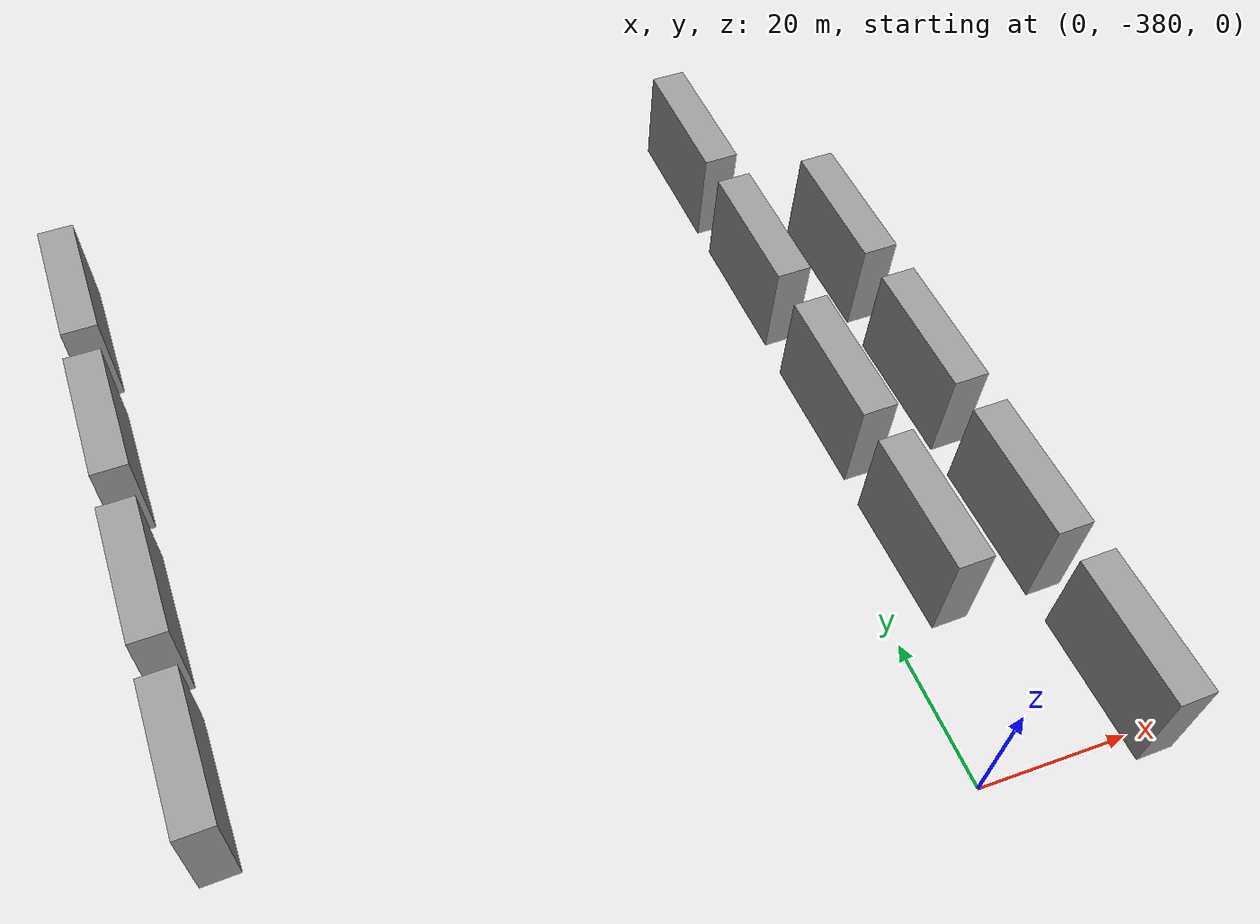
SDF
<sdf version="1.6">
 <world name="darpa_boxes">
  <model name="box_7">
   <link name="link">
    <inertial>
     <mass>1</mass>
     <inertia>
      <ixx>0.166667</ixx>
      <ixy>0</ixy>
      <ixz>0</ixz>
      <iyy>0.166667</iyy>
      <iyz>0</iyz>
      <izz>0.166667</izz>
     </inertia>
     <pose>0 0 7.5 0 -0 0</pose>
    </inertial>
    <visual name="visual">
     <geometry><box><size>5 20 15</size></box></geometry>
     <material>
      <script><name>Gazebo/Grey</name><uri>file://media/materials/scripts/gazebo.material</uri></script>
      <shader type="vertex"><normal_map>_default_</normal_map></shader>
      <ambient>0.3 0.3 0.3 1</ambient>
      <diffuse>0.7 0.7 0.7 1</diffuse>
      <specular>0.01 0.01 0.01 1</specular>
      <emissive>0 0 0 1</emissive>
     </material>
     <pose>0 0 7.5 0 -0 0</pose>
    </visual>
    <collision name="collision">
     <pose>0 0 7.5 0 -0 0</pose>
     <geometry><box><size>5 20 15</size></box></geometry>
     <surface>
      <friction>
       <ode><mu>1</mu><mu2>1</mu2><fdir1>0 0 0</fdir1><slip1>0</slip1><slip2>0</slip2></ode>
       <torsional>
        <coefficient>1</coefficient>
        <patch_radius>0</patch_radius>
        <surface_radius>0</surface_radius>
        <use_patch_radius>1</use_patch_radius>
        <ode><slip>0</slip></ode>
       </torsional>
      </friction>
      <bounce><restitution_coefficient>0</restitution_coefficient><threshold>1e+06</threshold></bounce>
      <contact>
       <collide_without_contact>0</collide_without_contact>
       <collide_without_contact_bitmask>1</collide_without_contact_bitmask>
       <collide_bitmask>1</collide_bitmask>
       <ode>
        <soft_cfm>0</soft_cfm>
        <soft_erp>0.2</soft_erp>
        <kp>1e+13</kp>
        <kd>1</kd>
        <max_vel>0.01</max_vel>
        <min_depth>0</min_depth>
       </ode>
       <bullet>
        <split_impulse>1</split_impulse>
        <split_impulse_penetration_threshold>-0.01</split_impulse_penetration_threshold>
        <soft_cfm>0</soft_cfm>
        <soft_erp>0.2</soft_erp>
        <kp>1e+13</kp>
        <kd>1</kd>
       </bullet>
      </contact>
     </surface>
    </collision>
   </link>
   <static>1</static>
   <pose>6.45947 -274.93 -0.049551 0.005047 -0.000114 0.022472</pose>
  </model>
  <model name="box_8">
   <link name="link">
    <inertial>
     <mass>1</mass>
     <inertia>
      <ixx>0.166667</ixx>
      <ixy>0</ixy>
      <ixz>0</ixz>
      <iyy>0.166667</iyy>
      <iyz>0</iyz>
      <izz>0.166667</izz>
     </inertia>
     <pose>0 0 7.5 0 -0 0</pose>
    </inertial>
    <visual name="visual">
     <geometry><box><size>5 20 15</size></box></geometry>
     <material>
      <script><name>Gazebo/Grey</name><uri>file://media/materials/scripts/gazebo.material</uri></script>
      <shader type="vertex"><normal_map>_default_</normal_map></shader>
      <ambient>0.3 0.3 0.3 1</ambient>
      <diffuse>0.7 0.7 0.7 1</diffuse>
      <specular>0.01 0.01 0.01 1</specular>
      <emissive>0 0 0 1</emissive>
     </material>
     <pose>0 0 7.5 0 -0 0</pose>
    </visual>
    <collision name="collision">
     <pose>0 0 7.5 0 -0 0</pose>
     <geometry><box><size>5 20 15</size></box></geometry>
     <surface>
      <friction>
       <ode><mu>1</mu><mu2>1</mu2><fdir1>0 0 0</fdir1><slip1>0</slip1><slip2>0</slip2></ode>
       <torsional>
        <coefficient>1</coefficient>
        <patch_radius>0</patch_radius>
        <surface_radius>0</surface_radius>
        <use_patch_radius>1</use_patch_radius>
        <ode><slip>0</slip></ode>
       </torsional>
      </friction>
      <bounce><restitution_coefficient>0</restitution_coefficient><threshold>1e+06</threshold></bounce>
      <contact>
       <collide_without_contact>0</collide_without_contact>
       <collide_without_contact_bitmask>1</collide_without_contact_bitmask>
       <collide_bitmask>1</collide_bitmask>
       <ode>
        <soft_cfm>0</soft_cfm>
        <soft_erp>0.2</soft_erp>
        <kp>1e+13</kp>
        <kd>1</kd>
        <max_vel>0.01</max_vel>
        <min_depth>0</min_depth>
       </ode>
       <bullet>
        <split_impulse>1</split_impulse>
        <split_impulse_penetration_threshold>-0.01</split_impulse_penetration_threshold>
        <soft_cfm>0</soft_cfm>
        <soft_erp>0.2</soft_erp>
        <kp>1e+13</kp>
        <kd>1</kd>
       </bullet>
      </contact>
     </surface>
    </collision>
   </link>
   <static>1</static>
   <pose>6.96106 -299.323 -0.049551 0.005047 -0.000114 0.022472</pose>
  </model>
  <model name="box_9">
   <link name="link">
    <inertial>
     <mass>1</mass>
     <inertia>
      <ixx>0.166667</ixx>
      <ixy>0</ixy>
      <ixz>0</ixz>
      <iyy>0.166667</iyy>
      <iyz>0</iyz>
      <izz>0.166667</izz>
     </inertia>
     <pose>0 0 7.5 0 -0 0</pose>
    </inertial>
    <visual name="visual">
     <geometry><box><size>5 20 15</size></box></geometry>
     <material>
      <script><name>Gazebo/Grey</name><uri>file://media/materials/scripts/gazebo.material</uri></script>
      <shader type="vertex"><normal_map>_default_</normal_map></shader>
      <ambient>0.3 0.3 0.3 1</ambient>
      <diffuse>0.7 0.7 0.7 1</diffuse>
      <specular>0.01 0.01 0.01 1</specular>
      <emissive>0 0 0 1</emissive>
     </material>
     <pose>0 0 7.5 0 -0 0</pose>
    </visual>
    <collision name="collision">
     <pose>0 0 7.5 0 -0 0</pose>
     <geometry><box><size>5 20 15</size></box></geometry>
     <surface>
      <friction>
       <ode><mu>1</mu><mu2>1</mu2><fdir1>0 0 0</fdir1><slip1>0</slip1><slip2>0</slip2></ode>
       <torsional>
        <coefficient>1</coefficient>
        <patch_radius>0</patch_radius>
        <surface_radius>0</surface_radius>
        <use_patch_radius>1</use_patch_radius>
        <ode><slip>0</slip></ode>
       </torsional>
      </friction>
      <bounce><restitution_coefficient>0</restitution_coefficient><threshold>1e+06</threshold></bounce>
      <contact>
       <collide_without_contact>0</collide_without_contact>
       <collide_without_contact_bitmask>1</collide_without_contact_bitmask>
       <collide_bitmask>1</collide_bitmask>
       <ode>
        <soft_cfm>0</soft_cfm>
        <soft_erp>0.2</soft_erp>
        <kp>1e+13</kp>
        <kd>1</kd>
        <max_vel>0.01</max_vel>
        <min_depth>0</min_depth>
       </ode>
       <bullet>
        <split_impulse>1</split_impulse>
        <split_impulse_penetration_threshold>-0.01</split_impulse_penetration_threshold>
        <soft_cfm>0</soft_cfm>
        <soft_erp>0.2</soft_erp>
        <kp>1e+13</kp>
        <kd>1</kd>
       </bullet>
      </contact>
     </surface>
    </collision>
   </link>
   <static>1</static>
   <pose>7.18976 -324.823 -0.049551 0.005047 -0.000114 0.022472</pose>
  </model>
  <model name="box_10">
   <link name="link">
    <inertial>
     <mass>1</mass>
     <inertia>
      <ixx>0.166667</ixx>
      <ixy>0</ixy>
      <ixz>0</ixz>
      <iyy>0.166667</iyy>
      <iyz>0</iyz>
      <izz>0.166667</izz>
     </inertia>
     <pose>0 0 7.5 0 -0 0</pose>
    </inertial>
    <visual name="visual">
     <geometry><box><size>5 20 15</size></box></geometry>
     <material>
      <script><name>Gazebo/Grey</name><uri>file://media/materials/scripts/gazebo.material</uri></script>
      <shader type="vertex"><normal_map>_default_</normal_map></shader>
      <ambient>0.3 0.3 0.3 1</ambient>
      <diffuse>0.7 0.7 0.7 1</diffuse>
      <specular>0.01 0.01 0.01 1</specular>
      <emissive>0 0 0 1</emissive>
     </material>
     <pose>0 0 7.5 0 -0 0</pose>
    </visual>
    <collision name="collision">
     <pose>0 0 7.5 0 -0 0</pose>
     <geometry><box><size>5 20 15</size></box></geometry>
     <surface>
      <friction>
       <ode><mu>1</mu><mu2>1</mu2><fdir1>0 0 0</fdir1><slip1>0</slip1><slip2>0</slip2></ode>
       <torsional>
        <coefficient>1</coefficient>
        <patch_radius>0</patch_radius>
        <surface_radius>0</surface_radius>
        <use_patch_radius>1</use_patch_radius>
        <ode><slip>0</slip></ode>
       </torsional>
      </friction>
      <bounce><restitution_coefficient>0</restitution_coefficient><threshold>1e+06</threshold></bounce>
      <contact>
       <collide_without_contact>0</collide_without_contact>
       <collide_without_contact_bitmask>1</collide_without_contact_bitmask>
       <collide_bitmask>1</collide_bitmask>
       <ode>
        <soft_cfm>0</soft_cfm>
        <soft_erp>0.2</soft_erp>
        <kp>1e+13</kp>
        <kd>1</kd>
        <max_vel>0.01</max_vel>
        <min_depth>0</min_depth>
       </ode>
       <bullet>
        <split_impulse>1</split_impulse>
        <split_impulse_penetration_threshold>-0.01</split_impulse_penetration_threshold>
        <soft_cfm>0</soft_cfm>
        <soft_erp>0.2</soft_erp>
        <kp>1e+13</kp>
        <kd>1</kd>
       </bullet>
      </contact>
     </surface>
    </collision>
   </link>
   <static>1</static>
   <pose>7.48707 -349.113 -0.049551 0.005047 -0.000114 0.022472</pose>
  </model>
  <model name="box_14">
   <link name="link">
    <inertial>
     <mass>1</mass>
     <inertia>
      <ixx>0.166667</ixx>
      <ixy>0</ixy>
      <ixz>0</ixz>
      <iyy>0.166667</iyy>
      <iyz>0</iyz>
      <izz>0.166667</izz>
     </inertia>
     <pose>0 0 7.5 0 -0 0</pose>
    </inertial>
    <visual name="visual">
     <geometry><box><size>5 20 15</size></box></geometry>
     <material>
      <script><name>Gazebo/Grey</name><uri>file://media/materials/scripts/gazebo.material</uri></script>
      <shader type="vertex"><normal_map>_default_</normal_map></shader>
      <ambient>0.3 0.3 0.3 1</ambient>
      <diffuse>0.7 0.7 0.7 1</diffuse>
      <specular>0.01 0.01 0.01 1</specular>
      <emissive>0 0 0 1</emissive>
     </material>
     <pose>0 0 7.5 0 -0 0</pose>
    </visual>
    <collision name="collision">
     <pose>0 0 7.5 0 -0 0</pose>
     <geometry><box><size>5 20 15</size></box></geometry>
     <surface>
      <friction>
       <ode><mu>1</mu><mu2>1</mu2><fdir1>0 0 0</fdir1><slip1>0</slip1><slip2>0</slip2></ode>
       <torsional>
        <coefficient>1</coefficient>
        <patch_radius>0</patch_radius>
        <surface_radius>0</surface_radius>
        <use_patch_radius>1</use_patch_radius>
        <ode><slip>0</slip></ode>
       </torsional>
      </friction>
      <bounce><restitution_coefficient>0</restitution_coefficient><threshold>1e+06</threshold></bounce>
      <contact>
       <collide_without_contact>0</collide_without_contact>
       <collide_without_contact_bitmask>1</collide_without_contact_bitmask>
       <collide_bitmask>1</collide_bitmask>
       <ode>
        <soft_cfm>0</soft_cfm>
        <soft_erp>0.2</soft_erp>
        <kp>1e+13</kp>
        <kd>1</kd>
        <max_vel>0.01</max_vel>
        <min_depth>0</min_depth>
       </ode>
       <bullet>
        <split_impulse>1</split_impulse>
        <split_impulse_penetration_threshold>-0.01</split_impulse_penetration_threshold>
        <soft_cfm>0</soft_cfm>
        <soft_erp>0.2</soft_erp>
        <kp>1e+13</kp>
        <kd>1</kd>
       </bullet>
      </contact>
     </surface>
    </collision>
   </link>
   <static>1</static>
   <pose>22.0165 -373.029 -0.049551 0.005047 -0.000114 0.022472</pose>
  </model>
  <model name="box_15">
   <link name="link">
    <inertial>
     <mass>1</mass>
     <inertia>
      <ixx>0.166667</ixx>
      <ixy>0</ixy>
      <ixz>0</ixz>
      <iyy>0.166667</iyy>
      <iyz>0</iyz>
      <izz>0.166667</izz>
     </inertia>
     <pose>0 0 7.5 0 -0 0</pose>
    </inertial>
    <visual name="visual">
     <geometry><box><size>5 20 15</size></box></geometry>
     <material>
      <script><name>Gazebo/Grey</name><uri>file://media/materials/scripts/gazebo.material</uri></script>
      <shader type="vertex"><normal_map>_default_</normal_map></shader>
      <ambient>0.3 0.3 0.3 1</ambient>
      <diffuse>0.7 0.7 0.7 1</diffuse>
      <specular>0.01 0.01 0.01 1</specular>
      <emissive>0 0 0 1</emissive>
     </material>
     <pose>0 0 7.5 0 -0 0</pose>
    </visual>
    <collision name="collision">
     <pose>0 0 7.5 0 -0 0</pose>
     <geometry><box><size>5 20 15</size></box></geometry>
     <surface>
      <friction>
       <ode><mu>1</mu><mu2>1</mu2><fdir1>0 0 0</fdir1><slip1>0</slip1><slip2>0</slip2></ode>
       <torsional>
        <coefficient>1</coefficient>
        <patch_radius>0</patch_radius>
        <surface_radius>0</surface_radius>
        <use_patch_radius>1</use_patch_radius>
        <ode><slip>0</slip></ode>
       </torsional>
      </friction>
      <bounce><restitution_coefficient>0</restitution_coefficient><threshold>1e+06</threshold></bounce>
      <contact>
       <collide_without_contact>0</collide_without_contact>
       <collide_without_contact_bitmask>1</collide_without_contact_bitmask>
       <collide_bitmask>1</collide_bitmask>
       <ode>
        <soft_cfm>0</soft_cfm>
        <soft_erp>0.2</soft_erp>
        <kp>1e+13</kp>
        <kd>1</kd>
        <max_vel>0.01</max_vel>
        <min_depth>0</min_depth>
       </ode>
       <bullet>
        <split_impulse>1</split_impulse>
        <split_impulse_penetration_threshold>-0.01</split_impulse_penetration_threshold>
        <soft_cfm>0</soft_cfm>
        <soft_erp>0.2</soft_erp>
        <kp>1e+13</kp>
        <kd>1</kd>
       </bullet>
      </contact>
     </surface>
    </collision>
   </link>
   <static>1</static>
   <pose>21.2901 -348.884 -0.049551 0.005047 -0.000114 0.022472</pose>
  </model>
  <model name="box_16">
   <link name="link">
    <inertial>
     <mass>1</mass>
     <inertia>
      <ixx>0.166667</ixx>
      <ixy>0</ixy>
      <ixz>0</ixz>
      <iyy>0.166667</iyy>
      <iyz>0</iyz>
      <izz>0.166667</izz>
     </inertia>
     <pose>0 0 7.5 0 -0 0</pose>
    </inertial>
    <visual name="visual">
     <geometry><box><size>5 20 15</size></box></geometry>
     <material>
      <script><name>Gazebo/Grey</name><uri>file://media/materials/scripts/gazebo.material</uri></script>
      <shader type="vertex"><normal_map>_default_</normal_map></shader>
      <ambient>0.3 0.3 0.3 1</ambient>
      <diffuse>0.7 0.7 0.7 1</diffuse>
      <specular>0.01 0.01 0.01 1</specular>
      <emissive>0 0 0 1</emissive>
     </material>
     <pose>0 0 7.5 0 -0 0</pose>
    </visual>
    <collision name="collision">
     <pose>0 0 7.5 0 -0 0</pose>
     <geometry><box><size>5 20 15</size></box></geometry>
     <surface>
      <friction>
       <ode><mu>1</mu><mu2>1</mu2><fdir1>0 0 0</fdir1><slip1>0</slip1><slip2>0</slip2></ode>
       <torsional>
        <coefficient>1</coefficient>
        <patch_radius>0</patch_radius>
        <surface_radius>0</surface_radius>
        <use_patch_radius>1</use_patch_radius>
        <ode><slip>0</slip></ode>
       </torsional>
      </friction>
      <bounce><restitution_coefficient>0</restitution_coefficient><threshold>1e+06</threshold></bounce>
      <contact>
       <collide_without_contact>0</collide_without_contact>
       <collide_without_contact_bitmask>1</collide_without_contact_bitmask>
       <collide_bitmask>1</collide_bitmask>
       <ode>
        <soft_cfm>0</soft_cfm>
        <soft_erp>0.2</soft_erp>
        <kp>1e+13</kp>
        <kd>1</kd>
        <max_vel>0.01</max_vel>
        <min_depth>0</min_depth>
       </ode>
       <bullet>
        <split_impulse>1</split_impulse>
        <split_impulse_penetration_threshold>-0.01</split_impulse_penetration_threshold>
        <soft_cfm>0</soft_cfm>
        <soft_erp>0.2</soft_erp>
        <kp>1e+13</kp>
        <kd>1</kd>
       </bullet>
      </contact>
     </surface>
    </collision>
   </link>
   <static>1</static>
   <pose>20.8426 -324.277 -0.049551 0.005047 -0.000114 0.022472</pose>
  </model>
  <model name="box_17">
   <link name="link">
    <inertial>
     <mass>1</mass>
     <inertia>
      <ixx>0.166667</ixx>
      <ixy>0</ixy>
      <ixz>0</ixz>
      <iyy>0.166667</iyy>
      <iyz>0</iyz>
      <izz>0.166667</izz>
     </inertia>
     <pose>0 0 7.5 0 -0 0</pose>
    </inertial>
    <visual name="visual">
     <geometry><box><size>5 20 15</size></box></geometry>
     <material>
      <script><name>Gazebo/Grey</name><uri>file://media/materials/scripts/gazebo.material</uri></script>
      <shader type="vertex"><normal_map>_default_</normal_map></shader>
      <ambient>0.3 0.3 0.3 1</ambient>
      <diffuse>0.7 0.7 0.7 1</diffuse>
      <specular>0.01 0.01 0.01 1</specular>
      <emissive>0 0 0 1</emissive>
     </material>
     <pose>0 0 7.5 0 -0 0</pose>
    </visual>
    <collision name="collision">
     <pose>0 0 7.5 0 -0 0</pose>
     <geometry><box><size>5 20 15</size></box></geometry>
     <surface>
      <friction>
       <ode><mu>1</mu><mu2>1</mu2><fdir1>0 0 0</fdir1><slip1>0</slip1><slip2>0</slip2></ode>
       <torsional>
        <coefficient>1</coefficient>
        <patch_radius>0</patch_radius>
        <surface_radius>0</surface_radius>
        <use_patch_radius>1</use_patch_radius>
        <ode><slip>0</slip></ode>
       </torsional>
      </friction>
      <bounce><restitution_coefficient>0</restitution_coefficient><threshold>1e+06</threshold></bounce>
      <contact>
       <collide_without_contact>0</collide_without_contact>
       <collide_without_contact_bitmask>1</collide_without_contact_bitmask>
       <collide_bitmask>1</collide_bitmask>
       <ode>
        <soft_cfm>0</soft_cfm>
        <soft_erp>0.2</soft_erp>
        <kp>1e+13</kp>
        <kd>1</kd>
        <max_vel>0.01</max_vel>
        <min_depth>0</min_depth>
       </ode>
       <bullet>
        <split_impulse>1</split_impulse>
        <split_impulse_penetration_threshold>-0.01</split_impulse_penetration_threshold>
        <soft_cfm>0</soft_cfm>
        <soft_erp>0.2</soft_erp>
        <kp>1e+13</kp>
        <kd>1</kd>
       </bullet>
      </contact>
     </surface>
    </collision>
   </link>
   <static>1</static>
   <pose>20.3309 -299.386 -0.049551 0.005047 -0.000114 0.022472</pose>
  </model>
  <model name="box_36">
   <link name="link">
    <inertial>
     <mass>1</mass>
     <inertia>
      <ixx>0.166667</ixx>
      <ixy>0</ixy>
      <ixz>0</ixz>
      <iyy>0.166667</iyy>
      <iyz>0</iyz>
      <izz>0.166667</izz>
     </inertia>
     <pose>0 0 7.5 0 -0 0</pose>
    </inertial>
    <visual name="visual">
     <geometry><box><size>5 20 15</size></box></geometry>
     <material>
      <script><name>Gazebo/Grey</name><uri>file://media/materials/scripts/gazebo.material</uri></script>
      <shader type="vertex"><normal_map>_default_</normal_map></shader>
      <ambient>0.3 0.3 0.3 1</ambient>
      <diffuse>0.7 0.7 0.7 1</diffuse>
      <specular>0.01 0.01 0.01 1</specular>
      <emissive>0 0 0 1</emissive>
     </material>
     <pose>0 0 7.5 0 -0 0</pose>
    </visual>
    <collision name="collision">
     <pose>0 0 7.5 0 -0 0</pose>
     <geometry><box><size>5 20 15</size></box></geometry>
     <surface>
      <friction>
       <ode><mu>1</mu><mu2>1</mu2><fdir1>0 0 0</fdir1><slip1>0</slip1><slip2>0</slip2></ode>
       <torsional>
        <coefficient>1</coefficient>
        <patch_radius>0</patch_radius>
        <surface_radius>0</surface_radius>
        <use_patch_radius>1</use_patch_radius>
        <ode><slip>0</slip></ode>
       </torsional>
      </friction>
      <bounce><restitution_coefficient>0</restitution_coefficient><threshold>1e+06</threshold></bounce>
      <contact>
       <collide_without_contact>0</collide_without_contact>
       <collide_without_contact_bitmask>1</collide_without_contact_bitmask>
       <collide_bitmask>1</collide_bitmask>
       <ode>
        <soft_cfm>0</soft_cfm>
        <soft_erp>0.2</soft_erp>
        <kp>1e+13</kp>
        <kd>1</kd>
        <max_vel>0.01</max_vel>
        <min_depth>0</min_depth>
       </ode>
       <bullet>
        <split_impulse>1</split_impulse>
        <split_impulse_penetration_threshold>-0.01</split_impulse_penetration_threshold>
        <soft_cfm>0</soft_cfm>
        <soft_erp>0.2</soft_erp>
        <kp>1e+13</kp>
        <kd>1</kd>
       </bullet>
      </contact>
     </surface>
    </collision>
   </link>
   <static>1</static>
   <pose>-86.9494 -350.761 -0.049551 0.005046 -0.000145 0.028592</pose>
  </model>
  <model name="box_37">
   <link name="link">
    <inertial>
     <mass>1</mass>
     <inertia>
      <ixx>0.166667</ixx>
      <ixy>0</ixy>
      <ixz>0</ixz>
      <iyy>0.166667</iyy>
      <iyz>0</iyz>
      <izz>0.166667</izz>
     </inertia>
     <pose>0 0 7.5 0 -0 0</pose>
    </inertial>
    <visual name="visual">
     <geometry><box><size>5 20 15</size></box></geometry>
     <material>
      <script><name>Gazebo/Grey</name><uri>file://media/materials/scripts/gazebo.material</uri></script>
      <shader type="vertex"><normal_map>_default_</normal_map></shader>
      <ambient>0.3 0.3 0.3 1</ambient>
      <diffuse>0.7 0.7 0.7 1</diffuse>
      <specular>0.01 0.01 0.01 1</specular>
      <emissive>0 0 0 1</emissive>
     </material>
     <pose>0 0 7.5 0 -0 0</pose>
    </visual>
    <collision name="collision">
     <pose>0 0 7.5 0 -0 0</pose>
     <geometry><box><size>5 20 15</size></box></geometry>
     <surface>
      <friction>
       <ode><mu>1</mu><mu2>1</mu2><fdir1>0 0 0</fdir1><slip1>0</slip1><slip2>0</slip2></ode>
       <torsional>
        <coefficient>1</coefficient>
        <patch_radius>0</patch_radius>
        <surface_radius>0</surface_radius>
        <use_patch_radius>1</use_patch_radius>
        <ode><slip>0</slip></ode>
       </torsional>
      </friction>
      <bounce><restitution_coefficient>0</restitution_coefficient><threshold>1e+06</threshold></bounce>
      <contact>
       <collide_without_contact>0</collide_without_contact>
       <collide_without_contact_bitmask>1</collide_without_contact_bitmask>
       <collide_bitmask>1</collide_bitmask>
       <ode>
        <soft_cfm>0</soft_cfm>
        <soft_erp>0.2</soft_erp>
        <kp>1e+13</kp>
        <kd>1</kd>
        <max_vel>0.01</max_vel>
        <min_depth>0</min_depth>
       </ode>
       <bullet>
        <split_impulse>1</split_impulse>
        <split_impulse_penetration_threshold>-0.01</split_impulse_penetration_threshold>
        <soft_cfm>0</soft_cfm>
        <soft_erp>0.2</soft_erp>
        <kp>1e+13</kp>
        <kd>1</kd>
       </bullet>
      </contact>
     </surface>
    </collision>
   </link>
   <static>1</static>
   <pose>-87.7148 -326.153 -0.049551 0.005046 -0.000145 0.028592</pose>
  </model>
  <model name="box_38">
   <link name="link">
    <inertial>
     <mass>1</mass>
     <inertia>
      <ixx>0.166667</ixx>
      <ixy>0</ixy>
      <ixz>0</ixz>
      <iyy>0.166667</iyy>
      <iyz>0</iyz>
      <izz>0.166667</izz>
     </inertia>
     <pose>0 0 7.5 0 -0 0</pose>
    </inertial>
    <visual name="visual">
     <geometry><box><size>5 20 15</size></box></geometry>
     <material>
      <script><name>Gazebo/Grey</name><uri>file://media/materials/scripts/gazebo.material</uri></script>
      <shader type="vertex"><normal_map>_default_</normal_map></shader>
      <ambient>0.3 0.3 0.3 1</ambient>
      <diffuse>0.7 0.7 0.7 1</diffuse>
      <specular>0.01 0.01 0.01 1</specular>
      <emissive>0 0 0 1</emissive>
     </material>
     <pose>0 0 7.5 0 -0 0</pose>
    </visual>
    <collision name="collision">
     <pose>0 0 7.5 0 -0 0</pose>
     <geometry><box><size>5 20 15</size></box></geometry>
     <surface>
      <friction>
       <ode><mu>1</mu><mu2>1</mu2><fdir1>0 0 0</fdir1><slip1>0</slip1><slip2>0</slip2></ode>
       <torsional>
        <coefficient>1</coefficient>
        <patch_radius>0</patch_radius>
        <surface_radius>0</surface_radius>
        <use_patch_radius>1</use_patch_radius>
        <ode><slip>0</slip></ode>
       </torsional>
      </friction>
      <bounce><restitution_coefficient>0</restitution_coefficient><threshold>1e+06</threshold></bounce>
      <contact>
       <collide_without_contact>0</collide_without_contact>
       <collide_without_contact_bitmask>1</collide_without_contact_bitmask>
       <collide_bitmask>1</collide_bitmask>
       <ode>
        <soft_cfm>0</soft_cfm>
        <soft_erp>0.2</soft_erp>
        <kp>1e+13</kp>
        <kd>1</kd>
        <max_vel>0.01</max_vel>
        <min_depth>0</min_depth>
       </ode>
       <bullet>
        <split_impulse>1</split_impulse>
        <split_impulse_penetration_threshold>-0.01</split_impulse_penetration_threshold>
        <soft_cfm>0</soft_cfm>
        <soft_erp>0.2</soft_erp>
        <kp>1e+13</kp>
        <kd>1</kd>
       </bullet>
      </contact>
     </surface>
    </collision>
   </link>
   <static>1</static>
   <pose>-88.2973 -301.075 -0.049551 0.005046 -0.000145 0.028592</pose>
  </model>
  <model name="box_39">
   <link name="link">
    <inertial>
     <mass>1</mass>
     <inertia>
      <ixx>0.166667</ixx>
      <ixy>0</ixy>
      <ixz>0</ixz>
      <iyy>0.166667</iyy>
      <iyz>0</iyz>
      <izz>0.166667</izz>
     </inertia>
     <pose>0 0 7.5 0 -0 0</pose>
    </inertial>
    <visual name="visual">
     <geometry><box><size>5 20 15</size></box></geometry>
     <material>
      <script><name>Gazebo/Grey</name><uri>file://media/materials/scripts/gazebo.material</uri></script>
      <shader type="vertex"><normal_map>_default_</normal_map></shader>
      <ambient>0.3 0.3 0.3 1</ambient>
      <diffuse>0.7 0.7 0.7 1</diffuse>
      <specular>0.01 0.01 0.01 1</specular>
      <emissive>0 0 0 1</emissive>
     </material>
     <pose>0 0 7.5 0 -0 0</pose>
    </visual>
    <collision name="collision">
     <pose>0 0 7.5 0 -0 0</pose>
     <geometry><box><size>5 20 15</size></box></geometry>
     <surface>
      <friction>
       <ode><mu>1</mu><mu2>1</mu2><fdir1>0 0 0</fdir1><slip1>0</slip1><slip2>0</slip2></ode>
       <torsional>
        <coefficient>1</coefficient>
        <patch_radius>0</patch_radius>
        <surface_radius>0</surface_radius>
        <use_patch_radius>1</use_patch_radius>
        <ode><slip>0</slip></ode>
       </torsional>
      </friction>
      <bounce><restitution_coefficient>0</restitution_coefficient><threshold>1e+06</threshold></bounce>
      <contact>
       <collide_without_contact>0</collide_without_contact>
       <collide_without_contact_bitmask>1</collide_without_contact_bitmask>
       <collide_bitmask>1</collide_bitmask>
       <ode>
        <soft_cfm>0</soft_cfm>
        <soft_erp>0.2</soft_erp>
        <kp>1e+13</kp>
        <kd>1</kd>
        <max_vel>0.01</max_vel>
        <min_depth>0</min_depth>
       </ode>
       <bullet>
        <split_impulse>1</split_impulse>
        <split_impulse_penetration_threshold>-0.01</split_impulse_penetration_threshold>
        <soft_cfm>0</soft_cfm>
        <soft_erp>0.2</soft_erp>
        <kp>1e+13</kp>
        <kd>1</kd>
       </bullet>
      </contact>
     </surface>
    </collision>
   </link>
   <static>1</static>
   <pose>-88.6464 -276.704 -0.049551 0.005046 -0.000145 0.028592</pose>
  </model>
 </world>
</sdf>
